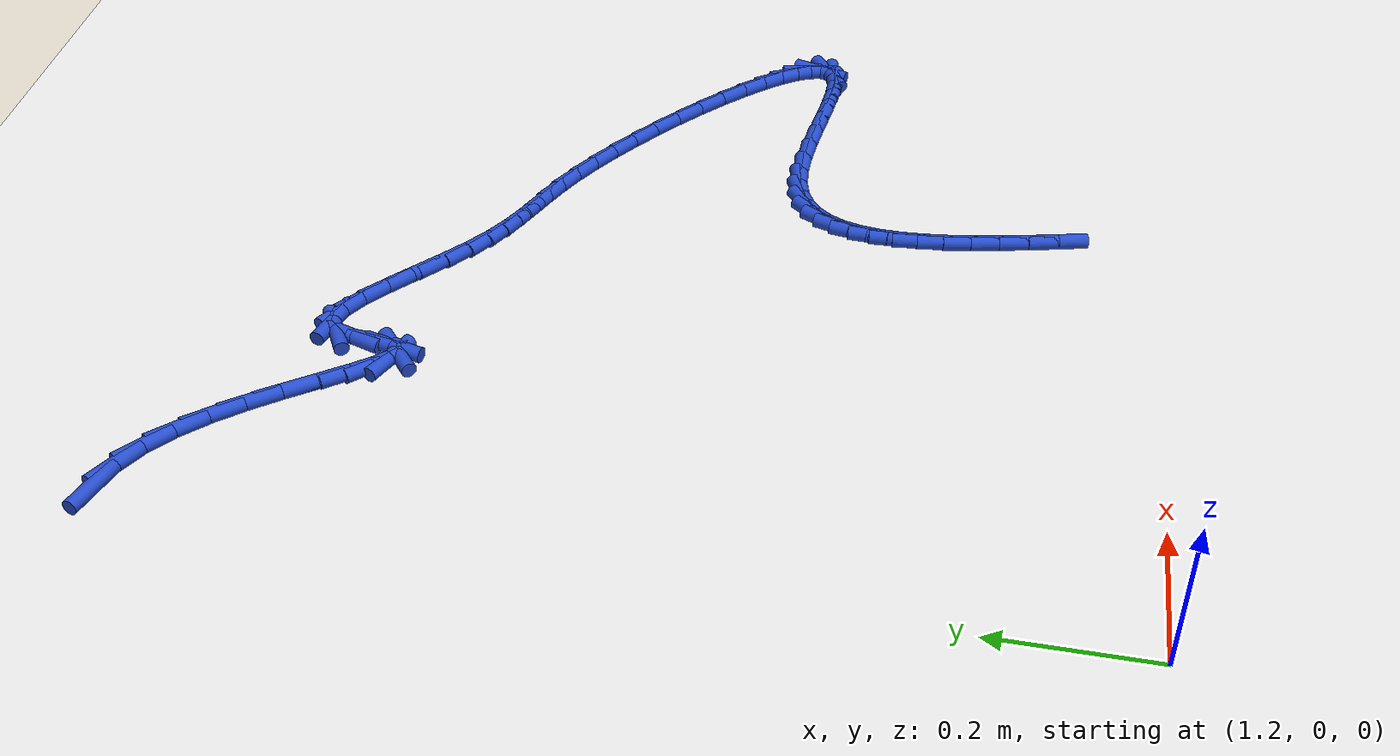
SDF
<sdf version="1.6">
 <world name="default">
  <model name="ground_plane">
   <static>1</static>
   <link name="link">
    <collision name="collision">
     <geometry><plane><normal>0 0 1</normal><size>100 100</size></plane></geometry>
     <surface><friction><ode><mu>100</mu><mu2>50</mu2></ode></friction></surface>
    </collision>
    <visual name="visual">
     <cast_shadows>0</cast_shadows>
     <geometry><plane><normal>0 0 1</normal><size>100 100</size></plane></geometry>
     <material>
      <script><uri>file://media/materials/scripts/gazebo.material</uri><name>Gazebo/WhiteGlow</name></script>
     </material>
    </visual>
   </link>
  </model>
  <model name="line">
   <link name="link_74">
    <pose>1.2224895948836327 1.2145964985926798 0.01 0 1.57 -0.2823294477277827</pose>
    <collision name="collision">
     <geometry><cylinder><radius>0.01</radius><length>0.08</length></cylinder></geometry>
    </collision>
    <visual name="visual">
     <material>
      <script><name>Gazebo/Blue</name><uri>file://media/materials/scripts/gazebo.material</uri></script>
     </material>
     <geometry><cylinder><radius>0.01</radius><length>0.08</length></cylinder></geometry>
    </visual>
   </link>
   <link name="link_75">
    <pose>1.2619691461625315 1.2031443459711963 0.01 0 1.57 -0.4972699372786359</pose>
    <collision name="collision">
     <geometry><cylinder><radius>0.01</radius><length>0.08</length></cylinder></geometry>
    </collision>
    <visual name="visual">
     <material>
      <script><name>Gazebo/Blue</name><uri>file://media/materials/scripts/gazebo.material</uri></script>
     </material>
     <geometry><cylinder><radius>0.01</radius><length>0.08</length></cylinder></geometry>
    </visual>
   </link>
   <link name="link_76">
    <pose>1.2996151643615195 1.1827114832084356 0.01 0 1.57 -0.6630169629303563</pose>
    <collision name="collision">
     <geometry><cylinder><radius>0.01</radius><length>0.08</length></cylinder></geometry>
    </collision>
    <visual name="visual">
     <material>
      <script><name>Gazebo/Blue</name><uri>file://media/materials/scripts/gazebo.material</uri></script>
     </material>
     <geometry><cylinder><radius>0.01</radius><length>0.08</length></cylinder></geometry>
    </visual>
   </link>
   <link name="link_77">
    <pose>1.3351791944842528 1.1549377371622744 0.01 0 1.57 -0.7786359830704839</pose>
    <collision name="collision">
     <geometry><cylinder><radius>0.01</radius><length>0.08</length></cylinder></geometry>
    </collision>
    <visual name="visual">
     <material>
      <script><name>Gazebo/Blue</name><uri>file://media/materials/scripts/gazebo.material</uri></script>
     </material>
     <geometry><cylinder><radius>0.01</radius><length>0.08</length></cylinder></geometry>
    </visual>
   </link>
   <link name="link_78">
    <pose>1.3684929181276138 1.1220715408927828 0.01 0 1.57 -0.8575658672298722</pose>
    <collision name="collision">
     <geometry><cylinder><radius>0.01</radius><length>0.08</length></cylinder></geometry>
    </collision>
    <visual name="visual">
     <material>
      <script><name>Gazebo/Blue</name><uri>file://media/materials/scripts/gazebo.material</uri></script>
     </material>
     <geometry><cylinder><radius>0.01</radius><length>0.08</length></cylinder></geometry>
    </visual>
   </link>
   <link name="link_79">
    <pose>1.3993880168884854 1.0863613274600323 0.01 0 1.57 -0.9085475853623997</pose>
    <collision name="collision">
     <geometry><cylinder><radius>0.01</radius><length>0.08</length></cylinder></geometry>
    </collision>
    <visual name="visual">
     <material>
      <script><name>Gazebo/Blue</name><uri>file://media/materials/scripts/gazebo.material</uri></script>
     </material>
     <geometry><cylinder><radius>0.01</radius><length>0.08</length></cylinder></geometry>
    </visual>
   </link>
   <link name="link_80">
    <pose>1.4276961723637487 1.0500555299240921 0.01 0 1.57 -0.935411668793046</pose>
    <collision name="collision">
     <geometry><cylinder><radius>0.01</radius><length>0.08</length></cylinder></geometry>
    </collision>
    <visual name="visual">
     <material>
      <script><name>Gazebo/Blue</name><uri>file://media/materials/scripts/gazebo.material</uri></script>
     </material>
     <geometry><cylinder><radius>0.01</radius><length>0.08</length></cylinder></geometry>
    </visual>
   </link>
   <link name="link_81">
    <pose>1.4532490661502875 1.0154025813450327 0.01 0 1.57 -0.9363981305107616</pose>
    <collision name="collision">
     <geometry><cylinder><radius>0.01</radius><length>0.08</length></cylinder></geometry>
    </collision>
    <visual name="visual">
     <material>
      <script><name>Gazebo/Blue</name><uri>file://media/materials/scripts/gazebo.material</uri></script>
     </material>
     <geometry><cylinder><radius>0.01</radius><length>0.08</length></cylinder></geometry>
    </visual>
   </link>
   <link name="link_82">
    <pose>1.4758783798449833 0.984650914782924 0.01 0 1.57 -0.899638248670119</pose>
    <collision name="collision">
     <geometry><cylinder><radius>0.01</radius><length>0.08</length></cylinder></geometry>
    </collision>
    <visual name="visual">
     <material>
      <script><name>Gazebo/Blue</name><uri>file://media/materials/scripts/gazebo.material</uri></script>
     </material>
     <geometry><cylinder><radius>0.01</radius><length>0.08</length></cylinder></geometry>
    </visual>
   </link>
   <link name="link_83">
    <pose>1.4954157950447189 0.9600489632978364 0.01 0 1.57 -0.7831385400786404</pose>
    <collision name="collision">
     <geometry><cylinder><radius>0.01</radius><length>0.08</length></cylinder></geometry>
    </collision>
    <visual name="visual">
     <material>
      <script><name>Gazebo/Blue</name><uri>file://media/materials/scripts/gazebo.material</uri></script>
     </material>
     <geometry><cylinder><radius>0.01</radius><length>0.08</length></cylinder></geometry>
    </visual>
   </link>
   <link name="link_84">
    <pose>1.5116929933463763 0.9438451599498405 0.01 0 1.57 -0.4082175256456219</pose>
    <collision name="collision">
     <geometry><cylinder><radius>0.01</radius><length>0.08</length></cylinder></geometry>
    </collision>
    <visual name="visual">
     <material>
      <script><name>Gazebo/Blue</name><uri>file://media/materials/scripts/gazebo.material</uri></script>
     </material>
     <geometry><cylinder><radius>0.01</radius><length>0.08</length></cylinder></geometry>
    </visual>
   </link>
   <link name="link_85">
    <pose>1.5245416563468377 0.9382879377990063 0.01 0 1.57 0.6705315272241761</pose>
    <collision name="collision">
     <geometry><cylinder><radius>0.01</radius><length>0.08</length></cylinder></geometry>
    </collision>
    <visual name="visual">
     <material>
      <script><name>Gazebo/Blue</name><uri>file://media/materials/scripts/gazebo.material</uri></script>
     </material>
     <geometry><cylinder><radius>0.01</radius><length>0.08</length></cylinder></geometry>
    </visual>
   </link>
   <link name="link_86">
    <pose>1.5337934656429852 0.945625729905404 0.01 0 1.57 1.3299591129805237</pose>
    <collision name="collision">
     <geometry><cylinder><radius>0.01</radius><length>0.08</length></cylinder></geometry>
    </collision>
    <visual name="visual">
     <material>
      <script><name>Gazebo/Blue</name><uri>file://media/materials/scripts/gazebo.material</uri></script>
     </material>
     <geometry><cylinder><radius>0.01</radius><length>0.08</length></cylinder></geometry>
    </visual>
   </link>
   <link name="link_87">
    <pose>1.5392999445771778 0.9680458600293266 0.01 0 1.57 1.4531796591207686</pose>
    <collision name="collision">
     <geometry><cylinder><radius>0.01</radius><length>0.08</length></cylinder></geometry>
    </collision>
    <visual name="visual">
     <material>
      <script><name>Gazebo/Blue</name><uri>file://media/materials/scripts/gazebo.material</uri></script>
     </material>
     <geometry><cylinder><radius>0.01</radius><length>0.08</length></cylinder></geometry>
    </visual>
   </link>
   <link name="link_88">
    <pose>1.543168728229599 1.0007872003099911 0.01 0 1.57 1.24595004408657</pose>
    <collision name="collision">
     <geometry><cylinder><radius>0.01</radius><length>0.08</length></cylinder></geometry>
    </collision>
    <visual name="visual">
     <material>
      <script><name>Gazebo/Blue</name><uri>file://media/materials/scripts/gazebo.material</uri></script>
     </material>
     <geometry><cylinder><radius>0.01</radius><length>0.08</length></cylinder></geometry>
    </visual>
   </link>
   <link name="link_89">
    <pose>1.5517025668989222 1.0261269619829403 0.01 0 1.57 0.48543429121529447</pose>
    <collision name="collision">
     <geometry><cylinder><radius>0.01</radius><length>0.08</length></cylinder></geometry>
    </collision>
    <visual name="visual">
     <material>
      <script><name>Gazebo/Blue</name><uri>file://media/materials/scripts/gazebo.material</uri></script>
     </material>
     <geometry><cylinder><radius>0.01</radius><length>0.08</length></cylinder></geometry>
    </visual>
   </link>
   <link name="link_90">
    <pose>1.568033529402283 1.0347421601739333 0.01 0 1.57 -0.23699953399336723</pose>
    <collision name="collision">
     <geometry><cylinder><radius>0.01</radius><length>0.08</length></cylinder></geometry>
    </collision>
    <visual name="visual">
     <material>
      <script><name>Gazebo/Blue</name><uri>file://media/materials/scripts/gazebo.material</uri></script>
     </material>
     <geometry><cylinder><radius>0.01</radius><length>0.08</length></cylinder></geometry>
    </visual>
   </link>
   <link name="link_91">
    <pose>1.5908924108517428 1.0292208516914794 0.01 0 1.57 -0.5310762120733694</pose>
    <collision name="collision">
     <geometry><cylinder><radius>0.01</radius><length>0.08</length></cylinder></geometry>
    </collision>
    <visual name="visual">
     <material>
      <script><name>Gazebo/Blue</name><uri>file://media/materials/scripts/gazebo.material</uri></script>
     </material>
     <geometry><cylinder><radius>0.01</radius><length>0.08</length></cylinder></geometry>
    </visual>
   </link>
   <link name="link_92">
    <pose>1.618748312006946 1.012859309317159 0.01 0 1.57 -0.6519065475690852</pose>
    <collision name="collision">
     <geometry><cylinder><radius>0.01</radius><length>0.08</length></cylinder></geometry>
    </collision>
    <visual name="visual">
     <material>
      <script><name>Gazebo/Blue</name><uri>file://media/materials/scripts/gazebo.material</uri></script>
     </material>
     <geometry><cylinder><radius>0.01</radius><length>0.08</length></cylinder></geometry>
    </visual>
   </link>
   <link name="link_93">
    <pose>1.6500703336275353 0.9889538058325529 0.01 0 1.57 -0.7024750122180493</pose>
    <collision name="collision">
     <geometry><cylinder><radius>0.01</radius><length>0.08</length></cylinder></geometry>
    </collision>
    <visual name="visual">
     <material>
      <script><name>Gazebo/Blue</name><uri>file://media/materials/scripts/gazebo.material</uri></script>
     </material>
     <geometry><cylinder><radius>0.01</radius><length>0.08</length></cylinder></geometry>
    </visual>
   </link>
   <link name="link_94">
    <pose>1.6833275764731546 0.960800614019242 0.01 0 1.57 -0.712923200212516</pose>
    <collision name="collision">
     <geometry><cylinder><radius>0.01</radius><length>0.08</length></cylinder></geometry>
    </collision>
    <visual name="visual">
     <material>
      <script><name>Gazebo/Blue</name><uri>file://media/materials/scripts/gazebo.material</uri></script>
     </material>
     <geometry><cylinder><radius>0.01</radius><length>0.08</length></cylinder></geometry>
    </visual>
   </link>
   <link name="link_95">
    <pose>1.7169891413034475 0.9316960066588065 0.01 0 1.57 -0.688305594998043</pose>
    <collision name="collision">
     <geometry><cylinder><radius>0.01</radius><length>0.08</length></cylinder></geometry>
    </collision>
    <visual name="visual">
     <material>
      <script><name>Gazebo/Blue</name><uri>file://media/materials/scripts/gazebo.material</uri></script>
     </material>
     <geometry><cylinder><radius>0.01</radius><length>0.08</length></cylinder></geometry>
    </visual>
   </link>
   <link name="link_96">
    <pose>1.7495241288780568 0.9049362565328273 0.01 0 1.57 -0.6229155264467783</pose>
    <collision name="collision">
     <geometry><cylinder><radius>0.01</radius><length>0.08</length></cylinder></geometry>
    </collision>
    <visual name="visual">
     <material>
      <script><name>Gazebo/Blue</name><uri>file://media/materials/scripts/gazebo.material</uri></script>
     </material>
     <geometry><cylinder><radius>0.01</radius><length>0.08</length></cylinder></geometry>
    </visual>
   </link>
   <link name="link_97">
    <pose>1.779666036397663 0.8832847314413479 0.01 0 1.57 -0.5423353585340827</pose>
    <collision name="collision">
     <geometry><cylinder><radius>0.01</radius><length>0.08</length></cylinder></geometry>
    </collision>
    <visual name="visual">
     <material>
      <script><name>Gazebo/Blue</name><uri>file://media/materials/scripts/gazebo.material</uri></script>
     </material>
     <geometry><cylinder><radius>0.01</radius><length>0.08</length></cylinder></geometry>
    </visual>
   </link>
   <link name="link_98">
    <pose>1.8076902078664112 0.8663971255746208 0.01 0 1.57 -0.4702617054645472</pose>
    <collision name="collision">
     <geometry><cylinder><radius>0.01</radius><length>0.08</length></cylinder></geometry>
    </collision>
    <visual name="visual">
     <material>
      <script><name>Gazebo/Blue</name><uri>file://media/materials/scripts/gazebo.material</uri></script>
     </material>
     <geometry><cylinder><radius>0.01</radius><length>0.08</length></cylinder></geometry>
    </visual>
   </link>
   <link name="link_99">
    <pose>1.8344293436915744 0.8528057518755728 0.01 0 1.57 -0.4207945067243035</pose>
    <collision name="collision">
     <geometry><cylinder><radius>0.01</radius><length>0.08</length></cylinder></geometry>
    </collision>
    <visual name="visual">
     <material>
      <script><name>Gazebo/Blue</name><uri>file://media/materials/scripts/gazebo.material</uri></script>
     </material>
     <geometry><cylinder><radius>0.01</radius><length>0.08</length></cylinder></geometry>
    </visual>
   </link>
   <link name="link_100">
    <pose>1.8607169056589288 0.8410413886885786 0.01 0 1.57 -0.4041569513931056</pose>
    <collision name="collision">
     <geometry><cylinder><radius>0.01</radius><length>0.08</length></cylinder></geometry>
    </collision>
    <visual name="visual">
     <material>
      <script><name>Gazebo/Blue</name><uri>file://media/materials/scripts/gazebo.material</uri></script>
     </material>
     <geometry><cylinder><radius>0.01</radius><length>0.08</length></cylinder></geometry>
    </visual>
   </link>
   <link name="link_101">
    <pose>1.88738635555425 0.8296348143580119 0.01 0 1.57 -0.4219543267056081</pose>
    <collision name="collision">
     <geometry><cylinder><radius>0.01</radius><length>0.08</length></cylinder></geometry>
    </collision>
    <visual name="visual">
     <material>
      <script><name>Gazebo/Blue</name><uri>file://media/materials/scripts/gazebo.material</uri></script>
     </material>
     <geometry><cylinder><radius>0.01</radius><length>0.08</length></cylinder></geometry>
    </visual>
   </link>
   <link name="link_102">
    <pose>1.9152711551633135 0.8171168072282473 0.01 0 1.57 -0.4670162688232615</pose>
    <collision name="collision">
     <geometry><cylinder><radius>0.01</radius><length>0.08</length></cylinder></geometry>
    </collision>
    <visual name="visual">
     <material>
      <script><name>Gazebo/Blue</name><uri>file://media/materials/scripts/gazebo.material</uri></script>
     </material>
     <geometry><cylinder><radius>0.01</radius><length>0.08</length></cylinder></geometry>
    </visual>
   </link>
   <link name="link_103">
    <pose>1.9451976482278608 0.8020273323898707 0.01 0 1.57 -0.5188452574538254</pose>
    <collision name="collision">
     <geometry><cylinder><radius>0.01</radius><length>0.08</length></cylinder></geometry>
    </collision>
    <visual name="visual">
     <material>
      <script><name>Gazebo/Blue</name><uri>file://media/materials/scripts/gazebo.material</uri></script>
     </material>
     <geometry><cylinder><radius>0.01</radius><length>0.08</length></cylinder></geometry>
    </visual>
   </link>
   <link name="link_104">
    <pose>1.9774441897620272 0.7836136044732954 0.01 0 1.57 -0.560619701023901</pose>
    <collision name="collision">
     <geometry><cylinder><radius>0.01</radius><length>0.08</length></cylinder></geometry>
    </collision>
    <visual name="visual">
     <material>
      <script><name>Gazebo/Blue</name><uri>file://media/materials/scripts/gazebo.material</uri></script>
     </material>
     <geometry><cylinder><radius>0.01</radius><length>0.08</length></cylinder></geometry>
    </visual>
   </link>
   <link name="link_105">
    <pose>2.0113617994955364 0.7623196828981149 0.01 0 1.57 -0.5955330810822916</pose>
    <collision name="collision">
     <geometry><cylinder><radius>0.01</radius><length>0.08</length></cylinder></geometry>
    </collision>
    <visual name="visual">
     <material>
      <script><name>Gazebo/Blue</name><uri>file://media/materials/scripts/gazebo.material</uri></script>
     </material>
     <geometry><cylinder><radius>0.01</radius><length>0.08</length></cylinder></geometry>
    </visual>
   </link>
   <link name="link_106">
    <pose>2.046211864123551 0.7387053099789419 0.01 0 1.57 -0.6267140763308037</pose>
    <collision name="collision">
     <geometry><cylinder><radius>0.01</radius><length>0.08</length></cylinder></geometry>
    </collision>
    <visual name="visual">
     <material>
      <script><name>Gazebo/Blue</name><uri>file://media/materials/scripts/gazebo.material</uri></script>
     </material>
     <geometry><cylinder><radius>0.01</radius><length>0.08</length></cylinder></geometry>
    </visual>
   </link>
   <link name="link_107">
    <pose>2.081255770341232 0.7133302280303891 0.01 0 1.57 -0.6563918643237553</pose>
    <collision name="collision">
     <geometry><cylinder><radius>0.01</radius><length>0.08</length></cylinder></geometry>
    </collision>
    <visual name="visual">
     <material>
      <script><name>Gazebo/Blue</name><uri>file://media/materials/scripts/gazebo.material</uri></script>
     </material>
     <geometry><cylinder><radius>0.01</radius><length>0.08</length></cylinder></geometry>
    </visual>
   </link>
   <link name="link_108">
    <pose>2.1157549048437416 0.6867541793670687 0.01 0 1.57 -0.6864639647730861</pose>
    <collision name="collision">
     <geometry><cylinder><radius>0.01</radius><length>0.08</length></cylinder></geometry>
    </collision>
    <visual name="visual">
     <material>
      <script><name>Gazebo/Blue</name><uri>file://media/materials/scripts/gazebo.material</uri></script>
     </material>
     <geometry><cylinder><radius>0.01</radius><length>0.08</length></cylinder></geometry>
    </visual>
   </link>
   <link name="link_109">
    <pose>2.1489706543262432 0.6595369063035934 0.01 0 1.57 -0.7189066676254009</pose>
    <collision name="collision">
     <geometry><cylinder><radius>0.01</radius><length>0.08</length></cylinder></geometry>
    </collision>
    <visual name="visual">
     <material>
      <script><name>Gazebo/Blue</name><uri>file://media/materials/scripts/gazebo.material</uri></script>
     </material>
     <geometry><cylinder><radius>0.01</radius><length>0.08</length></cylinder></geometry>
    </visual>
   </link>
   <link name="link_110">
    <pose>2.1801644054838976 0.632238151154576 0.01 0 1.57 -0.7562202286700123</pose>
    <collision name="collision">
     <geometry><cylinder><radius>0.01</radius><length>0.08</length></cylinder></geometry>
    </collision>
    <visual name="visual">
     <material>
      <script><name>Gazebo/Blue</name><uri>file://media/materials/scripts/gazebo.material</uri></script>
     </material>
     <geometry><cylinder><radius>0.01</radius><length>0.08</length></cylinder></geometry>
    </visual>
   </link>
   <link name="link_111">
    <pose>2.2085975450118664 0.6054176562346287 0.01 0 1.57 -0.8021284220906618</pose>
    <collision name="collision">
     <geometry><cylinder><radius>0.01</radius><length>0.08</length></cylinder></geometry>
    </collision>
    <visual name="visual">
     <material>
      <script><name>Gazebo/Blue</name><uri>file://media/materials/scripts/gazebo.material</uri></script>
     </material>
     <geometry><cylinder><radius>0.01</radius><length>0.08</length></cylinder></geometry>
    </visual>
   </link>
   <link name="link_112">
    <pose>2.2335314596053126 0.5796351638583643 0.01 0 1.57 -0.8629740578941674</pose>
    <collision name="collision">
     <geometry><cylinder><radius>0.01</radius><length>0.08</length></cylinder></geometry>
    </collision>
    <visual name="visual">
     <material>
      <script><name>Gazebo/Blue</name><uri>file://media/materials/scripts/gazebo.material</uri></script>
     </material>
     <geometry><cylinder><radius>0.01</radius><length>0.08</length></cylinder></geometry>
    </visual>
   </link>
   <link name="link_113">
    <pose>2.254227535959398 0.5554504163403958 0.01 0 1.57 -0.9509718096589719</pose>
    <collision name="collision">
     <geometry><cylinder><radius>0.01</radius><length>0.08</length></cylinder></geometry>
    </collision>
    <visual name="visual">
     <material>
      <script><name>Gazebo/Blue</name><uri>file://media/materials/scripts/gazebo.material</uri></script>
     </material>
     <geometry><cylinder><radius>0.01</radius><length>0.08</length></cylinder></geometry>
    </visual>
   </link>
   <link name="link_114">
    <pose>2.269947160769284 0.5334231559953346 0.01 0 1.57 -1.0927724434404391</pose>
    <collision name="collision">
     <geometry><cylinder><radius>0.01</radius><length>0.08</length></cylinder></geometry>
    </collision>
    <visual name="visual">
     <material>
      <script><name>Gazebo/Blue</name><uri>file://media/materials/scripts/gazebo.material</uri></script>
     </material>
     <geometry><cylinder><radius>0.01</radius><length>0.08</length></cylinder></geometry>
    </visual>
   </link>
   <link name="link_115">
    <pose>2.279951720730133 0.5141131251377941 0.01 0 1.57 -1.3528419273760768</pose>
    <collision name="collision">
     <geometry><cylinder><radius>0.01</radius><length>0.08</length></cylinder></geometry>
    </collision>
    <visual name="visual">
     <material>
      <script><name>Gazebo/Blue</name><uri>file://media/materials/scripts/gazebo.material</uri></script>
     </material>
     <geometry><cylinder><radius>0.01</radius><length>0.08</length></cylinder></geometry>
    </visual>
   </link>
   <link name="link_116">
    <pose>2.2835026025371077 0.49808006608238664 0.01 0 1.57 1.2806559688725072</pose>
    <collision name="collision">
     <geometry><cylinder><radius>0.01</radius><length>0.08</length></cylinder></geometry>
    </collision>
    <visual name="visual">
     <material>
      <script><name>Gazebo/Blue</name><uri>file://media/materials/scripts/gazebo.material</uri></script>
     </material>
     <geometry><cylinder><radius>0.01</radius><length>0.08</length></cylinder></geometry>
    </visual>
   </link>
   <link name="link_117">
    <pose>2.279861192885369 0.48588372114372474 0.01 0 1.57 0.5939113839688589</pose>
    <collision name="collision">
     <geometry><cylinder><radius>0.01</radius><length>0.08</length></cylinder></geometry>
    </collision>
    <visual name="visual">
     <material>
      <script><name>Gazebo/Blue</name><uri>file://media/materials/scripts/gazebo.material</uri></script>
     </material>
     <geometry><cylinder><radius>0.01</radius><length>0.08</length></cylinder></geometry>
    </visual>
   </link>
   <link name="link_118">
    <pose>2.268299195440981 0.47807665088106677 0.01 0 1.57 0.17348175496115986</pose>
    <collision name="collision">
     <geometry><cylinder><radius>0.01</radius><length>0.08</length></cylinder></geometry>
    </collision>
    <visual name="visual">
     <material>
      <script><name>Gazebo/Blue</name><uri>file://media/materials/scripts/gazebo.material</uri></script>
     </material>
     <geometry><cylinder><radius>0.01</radius><length>0.08</length></cylinder></geometry>
    </visual>
   </link>
   <link name="link_119">
    <pose>2.2488647916275686 0.47467090126400513 0.01 0 1.57 -0.003847392541179653</pose>
    <collision name="collision">
     <geometry><cylinder><radius>0.01</radius><length>0.08</length></cylinder></geometry>
    </collision>
    <visual name="visual">
     <material>
      <script><name>Gazebo/Blue</name><uri>file://media/materials/scripts/gazebo.material</uri></script>
     </material>
     <geometry><cylinder><radius>0.01</radius><length>0.08</length></cylinder></geometry>
    </visual>
   </link>
   <link name="link_120">
    <pose>2.222910206660673 0.4747707592333302 0.01 0 1.57 -0.08441396217936022</pose>
    <collision name="collision">
     <geometry><cylinder><radius>0.01</radius><length>0.08</length></cylinder></geometry>
    </collision>
    <visual name="visual">
     <material>
      <script><name>Gazebo/Blue</name><uri>file://media/materials/scripts/gazebo.material</uri></script>
     </material>
     <geometry><cylinder><radius>0.01</radius><length>0.08</length></cylinder></geometry>
    </visual>
   </link>
   <link name="link_121">
    <pose>2.1919124703637776 0.47739363388846046 0.01 0 1.57 -0.11987490327351906</pose>
    <collision name="collision">
     <geometry><cylinder><radius>0.01</radius><length>0.08</length></cylinder></geometry>
    </collision>
    <visual name="visual">
     <material>
      <script><name>Gazebo/Blue</name><uri>file://media/materials/scripts/gazebo.material</uri></script>
     </material>
     <geometry><cylinder><radius>0.01</radius><length>0.08</length></cylinder></geometry>
    </visual>
   </link>
   <link name="link_122">
    <pose>2.1573486125603667 0.48155693432881447 0.01 0 1.57 -0.12810108493067954</pose>
    <collision name="collision">
     <geometry><cylinder><radius>0.01</radius><length>0.08</length></cylinder></geometry>
    </collision>
    <visual name="visual">
     <material>
      <script><name>Gazebo/Blue</name><uri>file://media/materials/scripts/gazebo.material</uri></script>
     </material>
     <geometry><cylinder><radius>0.01</radius><length>0.08</length></cylinder></geometry>
    </visual>
   </link>
   <link name="link_123">
    <pose>2.1206956630739233 0.4862780696538105 0.01 0 1.57 -0.11478577849664443</pose>
    <collision name="collision">
     <geometry><cylinder><radius>0.01</radius><length>0.08</length></cylinder></geometry>
    </collision>
    <visual name="visual">
     <material>
      <script><name>Gazebo/Blue</name><uri>file://media/materials/scripts/gazebo.material</uri></script>
     </material>
     <geometry><cylinder><radius>0.01</radius><length>0.08</length></cylinder></geometry>
    </visual>
   </link>
   <link name="link_124">
    <pose>2.08343065172793 0.4905744489628671 0.01 0 1.57 -0.07920289469813317</pose>
    <collision name="collision">
     <geometry><cylinder><radius>0.01</radius><length>0.08</length></cylinder></geometry>
    </collision>
    <visual name="visual">
     <material>
      <script><name>Gazebo/Blue</name><uri>file://media/materials/scripts/gazebo.material</uri></script>
     </material>
     <geometry><cylinder><radius>0.01</radius><length>0.08</length></cylinder></geometry>
    </visual>
   </link>
   <link name="link_125">
    <pose>2.0470306083458714 0.49346348135540263 0.01 0 1.57 -0.014653185320469499</pose>
    <collision name="collision">
     <geometry><cylinder><radius>0.01</radius><length>0.08</length></cylinder></geometry>
    </collision>
    <visual name="visual">
     <material>
      <script><name>Gazebo/Blue</name><uri>file://media/materials/scripts/gazebo.material</uri></script>
     </material>
     <geometry><cylinder><radius>0.01</radius><length>0.08</length></cylinder></geometry>
    </visual>
   </link>
   <link name="link_126">
    <pose>2.01297256275123 0.4939625759308356 0.01 0 1.57 0.09436177692998067</pose>
    <collision name="collision">
     <geometry><cylinder><radius>0.01</radius><length>0.08</length></cylinder></geometry>
    </collision>
    <visual name="visual">
     <material>
      <script><name>Gazebo/Blue</name><uri>file://media/materials/scripts/gazebo.material</uri></script>
     </material>
     <geometry><cylinder><radius>0.01</radius><length>0.08</length></cylinder></geometry>
    </visual>
   </link>
   <link name="link_127">
    <pose>1.9827186925319569 0.49109926347919447 0.01 0 1.57 0.25614472768371965</pose>
    <collision name="collision">
     <geometry><cylinder><radius>0.01</radius><length>0.08</length></cylinder></geometry>
    </collision>
    <visual name="visual">
     <material>
      <script><name>Gazebo/Blue</name><uri>file://media/materials/scripts/gazebo.material</uri></script>
     </material>
     <geometry><cylinder><radius>0.01</radius><length>0.08</length></cylinder></geometry>
    </visual>
   </link>
   <link name="link_128">
    <pose>1.957037913359749 0.4843735277497099 0.01 0 1.57 0.4549013906949087</pose>
    <collision name="collision">
     <geometry><cylinder><radius>0.01</radius><length>0.08</length></cylinder></geometry>
    </collision>
    <visual name="visual">
     <material>
      <script><name>Gazebo/Blue</name><uri>file://media/materials/scripts/gazebo.material</uri></script>
     </material>
     <geometry><cylinder><radius>0.01</radius><length>0.08</length></cylinder></geometry>
    </visual>
   </link>
   <link name="link_129">
    <pose>1.9357251288040584 0.4739491346628434 0.01 0 1.57 0.6793672608784492</pose>
    <collision name="collision">
     <geometry><cylinder><radius>0.01</radius><length>0.08</length></cylinder></geometry>
    </collision>
    <visual name="visual">
     <material>
      <script><name>Gazebo/Blue</name><uri>file://media/materials/scripts/gazebo.material</uri></script>
     </material>
     <geometry><cylinder><radius>0.01</radius><length>0.08</length></cylinder></geometry>
    </visual>
   </link>
   <link name="link_130">
    <pose>1.9185021972690415 0.4600396298885135 0.01 0 1.57 0.9080088088746744</pose>
    <collision name="collision">
     <geometry><cylinder><radius>0.01</radius><length>0.08</length></cylinder></geometry>
    </collision>
    <visual name="visual">
     <material>
      <script><name>Gazebo/Blue</name><uri>file://media/materials/scripts/gazebo.material</uri></script>
     </material>
     <geometry><cylinder><radius>0.01</radius><length>0.08</length></cylinder></geometry>
    </visual>
   </link>
   <link name="link_131">
    <pose>1.905090977158856 0.44285855909663957 0.01 0 1.57 1.1167558609638926</pose>
    <collision name="collision">
     <geometry><cylinder><radius>0.01</radius><length>0.08</length></cylinder></geometry>
    </collision>
    <visual name="visual">
     <material>
      <script><name>Gazebo/Blue</name><uri>file://media/materials/scripts/gazebo.material</uri></script>
     </material>
     <geometry><cylinder><radius>0.01</radius><length>0.08</length></cylinder></geometry>
    </visual>
   </link>
   <link name="link_132">
    <pose>1.895213326877658 0.4226194679571399 0.01 0 1.57 1.2914189164286354</pose>
    <collision name="collision">
     <geometry><cylinder><radius>0.01</radius><length>0.08</length></cylinder></geometry>
    </collision>
    <visual name="visual">
     <material>
      <script><name>Gazebo/Blue</name><uri>file://media/materials/scripts/gazebo.material</uri></script>
     </material>
     <geometry><cylinder><radius>0.01</radius><length>0.08</length></cylinder></geometry>
    </visual>
   </link>
   <link name="link_133">
    <pose>1.8885911048296042 0.39953590213993345 0.01 0 1.57 1.4299880322840948</pose>
    <collision name="collision">
     <geometry><cylinder><radius>0.01</radius><length>0.08</length></cylinder></geometry>
    </collision>
    <visual name="visual">
     <material>
      <script><name>Gazebo/Blue</name><uri>file://media/materials/scripts/gazebo.material</uri></script>
     </material>
     <geometry><cylinder><radius>0.01</radius><length>0.08</length></cylinder></geometry>
    </visual>
   </link>
   <link name="link_134">
    <pose>1.884946169418852 0.3738214073149396 0.01 0 1.57 1.5371891049749205</pose>
    <collision name="collision">
     <geometry><cylinder><radius>0.01</radius><length>0.08</length></cylinder></geometry>
    </collision>
    <visual name="visual">
     <material>
      <script><name>Gazebo/Blue</name><uri>file://media/materials/scripts/gazebo.material</uri></script>
     </material>
     <geometry><cylinder><radius>0.01</radius><length>0.08</length></cylinder></geometry>
    </visual>
   </link>
   <link name="link_135">
    <pose>1.8840003790495587 0.3456895291520763 0.01 0 1.57 -1.522205027587814</pose>
    <collision name="collision">
     <geometry><cylinder><radius>0.01</radius><length>0.08</length></cylinder></geometry>
    </collision>
    <visual name="visual">
     <material>
      <script><name>Gazebo/Blue</name><uri>file://media/materials/scripts/gazebo.material</uri></script>
     </material>
     <geometry><cylinder><radius>0.01</radius><length>0.08</length></cylinder></geometry>
    </visual>
   </link>
   <link name="link_136">
    <pose>1.8854755921258795 0.315353813321262 0.01 0 1.57 -1.4593356266487008</pose>
    <collision name="collision">
     <geometry><cylinder><radius>0.01</radius><length>0.08</length></cylinder></geometry>
    </collision>
    <visual name="visual">
     <material>
      <script><name>Gazebo/Blue</name><uri>file://media/materials/scripts/gazebo.material</uri></script>
     </material>
     <geometry><cylinder><radius>0.01</radius><length>0.08</length></cylinder></geometry>
    </visual>
   </link>
   <link name="link_137">
    <pose>1.8890936670519725 0.2830278054924172 0.01 0 1.57 -1.4113876481168421</pose>
    <collision name="collision">
     <geometry><cylinder><radius>0.01</radius><length>0.08</length></cylinder></geometry>
    </collision>
    <visual name="visual">
     <material>
      <script><name>Gazebo/Blue</name><uri>file://media/materials/scripts/gazebo.material</uri></script>
     </material>
     <geometry><cylinder><radius>0.01</radius><length>0.08</length></cylinder></geometry>
    </visual>
   </link>
   <link name="link_138">
    <pose>1.8945764622319945 0.24892505133545864 0.01 0 1.57 -1.3751218390920705</pose>
    <collision name="collision">
     <geometry><cylinder><radius>0.01</radius><length>0.08</length></cylinder></geometry>
    </collision>
    <visual name="visual">
     <material>
      <script><name>Gazebo/Blue</name><uri>file://media/materials/scripts/gazebo.material</uri></script>
     </material>
     <geometry><cylinder><radius>0.01</radius><length>0.08</length></cylinder></geometry>
    </visual>
   </link>
   <link name="link_139">
    <pose>1.9016458360701016 0.21325909652030733 0.01 0 1.57 -1.3482145866080564</pose>
    <collision name="collision">
     <geometry><cylinder><radius>0.01</radius><length>0.08</length></cylinder></geometry>
    </collision>
    <visual name="visual">
     <material>
      <script><name>Gazebo/Blue</name><uri>file://media/materials/scripts/gazebo.material</uri></script>
     </material>
     <geometry><cylinder><radius>0.01</radius><length>0.08</length></cylinder></geometry>
    </visual>
   </link>
   <link name="link_140">
    <pose>1.9100236469704508 0.17624348671688064 0.01 0 1.57 -1.3290228726390947</pose>
    <collision name="collision">
     <geometry><cylinder><radius>0.01</radius><length>0.08</length></cylinder></geometry>
    </collision>
    <visual name="visual">
     <material>
      <script><name>Gazebo/Blue</name><uri>file://media/materials/scripts/gazebo.material</uri></script>
     </material>
     <geometry><cylinder><radius>0.01</radius><length>0.08</length></cylinder></geometry>
    </visual>
   </link>
   <link name="link_141">
    <pose>1.9194317533371996 0.13809176759509667 0.01 0 1.57 -1.316405573875632</pose>
    <collision name="collision">
     <geometry><cylinder><radius>0.01</radius><length>0.08</length></cylinder></geometry>
    </collision>
    <visual name="visual">
     <material>
      <script><name>Gazebo/Blue</name><uri>file://media/materials/scripts/gazebo.material</uri></script>
     </material>
     <geometry><cylinder><radius>0.01</radius><length>0.08</length></cylinder></geometry>
    </visual>
   </link>
  </model>
 </world>
</sdf>
